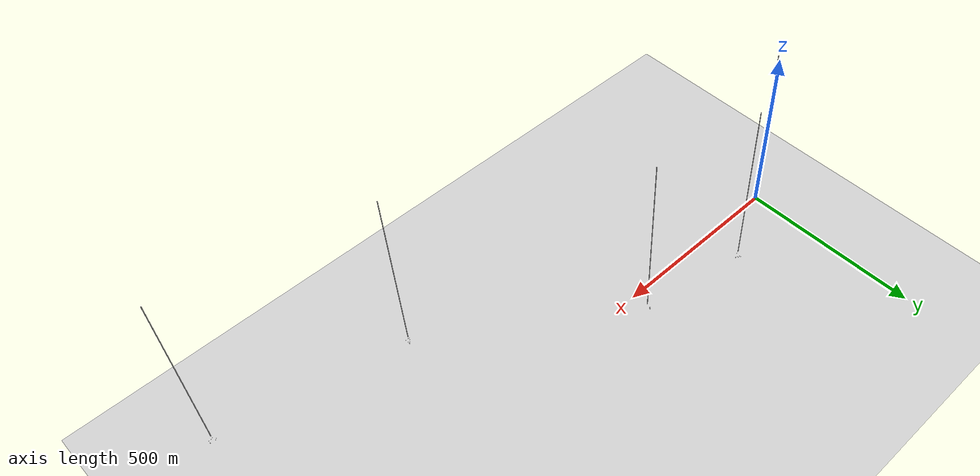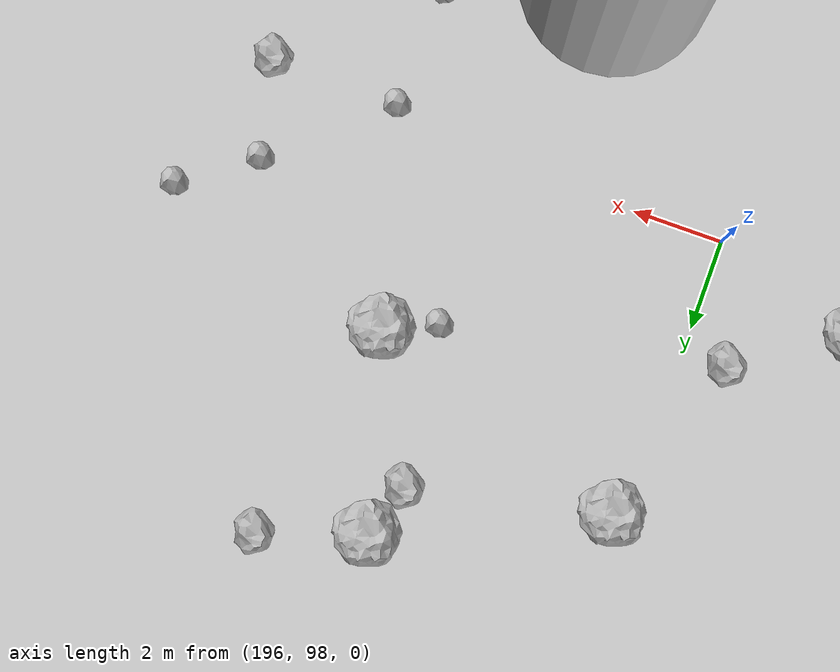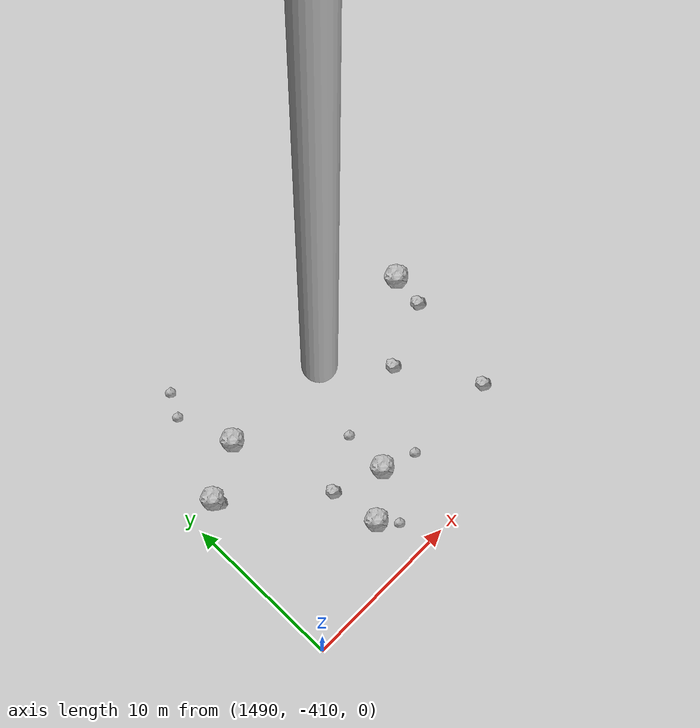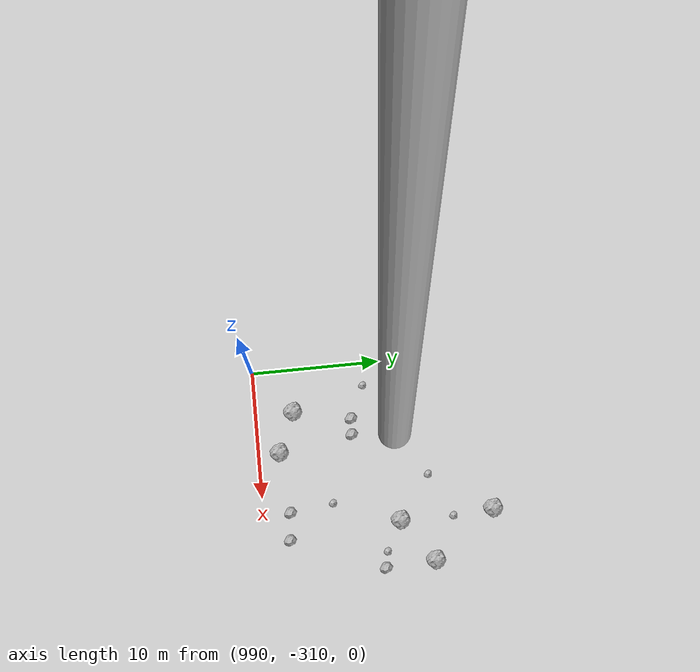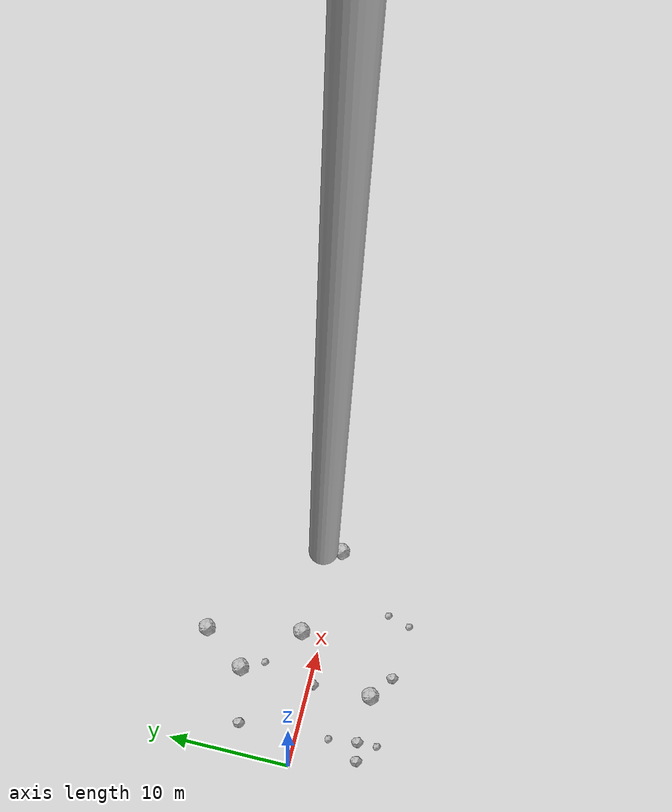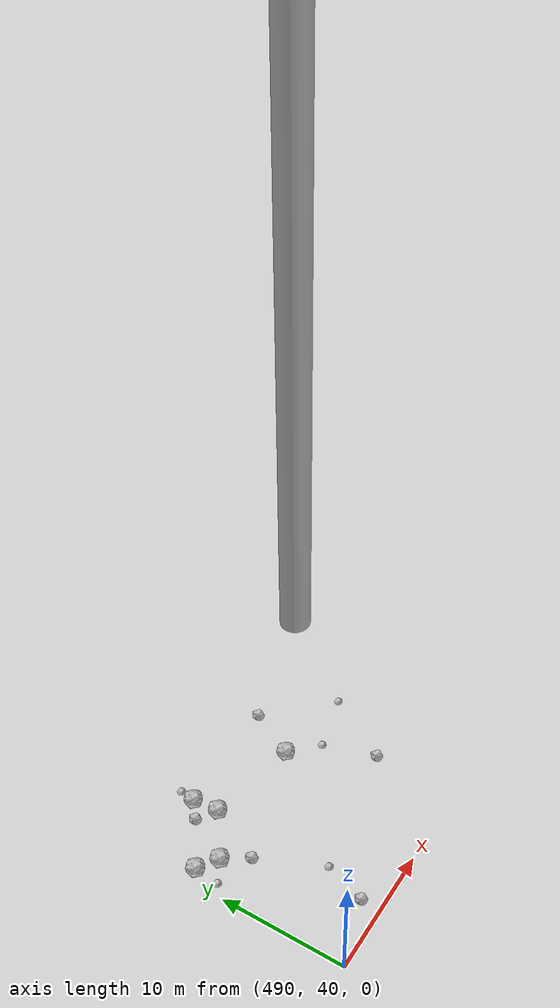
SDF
<?xml version="1.0" ?>
<sdf version="1.6">
  <world name="default">

    <include>
      <uri>model://custom_ground</uri>
    </include>

    <include>
      <uri>model://sun</uri>
    </include>

    <spherical_coordinates>
      <surface_model>EARTH_WGS84</surface_model>
      <latitude_deg>38.161479</latitude_deg>
      <longitude_deg>-122.454630</longitude_deg>
      <elevation>488.0</elevation>
      <heading_deg>90</heading_deg>
    </spherical_coordinates>

    <model name="rock1_0_0">
      <include>
        <uri>model://rock1</uri>
        <pose>9.806226273194557 9.635605801908241 0.5 0 0 0</pose>
      </include>
    </model>
    <model name="rock1_0_1">
      <include>
        <uri>model://rock1</uri>
        <pose>11.434023313113588 1.7371510292280838 0.5 0 0 0</pose>
      </include>
    </model>
    <model name="rock1_0_2">
      <include>
        <uri>model://rock1</uri>
        <pose>7.086647008703208 5.93867562342697 0.5 0 0 0</pose>
      </include>
    </model>
    <model name="rock1_0_3">
      <include>
        <uri>model://rock1</uri>
        <pose>7.252653592843094 -5.152449096167386 0.5 0 0 0</pose>
      </include>
    </model>
    <model name="rock1_0_4">
      <include>
        <uri>model://rock1</uri>
        <pose>19.60357026715036 0.11052997351128369 0.5 0 0 0</pose>
      </include>
    </model>
    <model name="rock2_0_0">
      <include>
        <uri>model://rock2</uri>
        <pose>2.4563849104212543 4.830803700542845 0.3 0 0 0</pose>
      </include>
    </model>
    <model name="rock2_0_1">
      <include>
        <uri>model://rock2</uri>
        <pose>7.069601831724905 -0.2876015758020394 0.3 0 0 0</pose>
      </include>
    </model>
    <model name="rock2_0_2">
      <include>
        <uri>model://rock2</uri>
        <pose>3.218510120576239 -4.946196185809486 0.3 0 0 0</pose>
      </include>
    </model>
    <model name="rock2_0_3">
      <include>
        <uri>model://rock2</uri>
        <pose>9.211642133515735 -6.619205438132085 0.3 0 0 0</pose>
      </include>
    </model>
    <model name="rock2_0_4">
      <include>
        <uri>model://rock2</uri>
        <pose>1.6880100825145372 -5.177539545386951 0.3 0 0 0</pose>
      </include>
    </model>
    <model name="rock3_0_0">
      <include>
        <uri>model://rock3</uri>
        <pose>2.917738383887296 -2.6170254192683595 0.2 0 0 0</pose>
      </include>
    </model>
    <model name="rock3_0_1">
      <include>
        <uri>model://rock3</uri>
        <pose>14.099987020125337 -7.109140157967708 0.2 0 0 0</pose>
      </include>
    </model>
    <model name="rock3_0_2">
      <include>
        <uri>model://rock3</uri>
        <pose>3.271651831472273 -6.580611617294785 0.2 0 0 0</pose>
      </include>
    </model>
    <model name="rock3_0_3">
      <include>
        <uri>model://rock3</uri>
        <pose>14.672986854783751 -5.190299554719553 0.2 0 0 0</pose>
      </include>
    </model>
    <model name="rock3_0_4">
      <include>
        <uri>model://rock3</uri>
        <pose>8.036377437308532 4.059192648709153 0.2 0 0 0</pose>
      </include>
    </model>
    <model name="rock1_1_0">
      <include>
        <uri>model://rock1</uri>
        <pose>201.08624456078604 106.48152644956753 0.5 0 0 0</pose>
      </include>
    </model>
    <model name="rock1_1_1">
      <include>
        <uri>model://rock1</uri>
        <pose>196.3736275888332 104.32919044982532 0.5 0 0 0</pose>
      </include>
    </model>
    <model name="rock1_1_2">
      <include>
        <uri>model://rock1</uri>
        <pose>193.44001701241675 93.29503569209547 0.5 0 0 0</pose>
      </include>
    </model>
    <model name="rock1_1_3">
      <include>
        <uri>model://rock1</uri>
        <pose>202.2928516662522 102.2792011527591 0.5 0 0 0</pose>
      </include>
    </model>
    <model name="rock1_1_4">
      <include>
        <uri>model://rock1</uri>
        <pose>192.71290734245446 98.9714602832213 0.5 0 0 0</pose>
      </include>
    </model>
    <model name="rock2_1_0">
      <include>
        <uri>model://rock2</uri>
        <pose>206.53869026769877 97.49744673602878 0.3 0 0 0</pose>
      </include>
    </model>
    <model name="rock2_1_1">
      <include>
        <uri>model://rock2</uri>
        <pose>203.34417144211199 107.28238782374629 0.3 0 0 0</pose>
      </include>
    </model>
    <model name="rock2_1_2">
      <include>
        <uri>model://rock2</uri>
        <pose>195.32040305328655 108.14781541275718 0.3 0 0 0</pose>
      </include>
    </model>
    <model name="rock2_1_3">
      <include>
        <uri>model://rock2</uri>
        <pose>200.6791959377038 105.30753175909632 0.3 0 0 0</pose>
      </include>
    </model>
    <model name="rock2_1_4">
      <include>
        <uri>model://rock2</uri>
        <pose>195.07631069086864 100.53846789827196 0.3 0 0 0</pose>
      </include>
    </model>
    <model name="rock3_1_0">
      <include>
        <uri>model://rock3</uri>
        <pose>203.5225304710028 94.77417950737953 0.2 0 0 0</pose>
      </include>
    </model>
    <model name="rock3_1_1">
      <include>
        <uri>model://rock3</uri>
        <pose>201.12299971633848 101.74154530155039 0.2 0 0 0</pose>
      </include>
    </model>
    <model name="rock3_1_2">
      <include>
        <uri>model://rock3</uri>
        <pose>207.57856147508852 100.7693442086203 0.2 0 0 0</pose>
      </include>
    </model>
    <model name="rock3_1_3">
      <include>
        <uri>model://rock3</uri>
        <pose>206.01626186793928 99.61545129324018 0.2 0 0 0</pose>
      </include>
    </model>
    <model name="rock3_1_4">
      <include>
        <uri>model://rock3</uri>
        <pose>203.61835413717154 97.50680967952664 0.2 0 0 0</pose>
      </include>
    </model>
    <model name="rock1_2_0">
      <include>
        <uri>model://rock1</uri>
        <pose>495.9140366056291 54.3205018540382 0.5 0 0 0</pose>
      </include>
    </model>
    <model name="rock1_2_1">
      <include>
        <uri>model://rock1</uri>
        <pose>495.73953226885504 56.39329569973593 0.5 0 0 0</pose>
      </include>
    </model>
    <model name="rock1_2_2">
      <include>
        <uri>model://rock1</uri>
        <pose>492.52492719019205 51.86968842045019 0.5 0 0 0</pose>
      </include>
    </model>
    <model name="rock1_2_3">
      <include>
        <uri>model://rock1</uri>
        <pose>490.96192601683805 52.91630241078057 0.5 0 0 0</pose>
      </include>
    </model>
    <model name="rock1_2_4">
      <include>
        <uri>model://rock1</uri>
        <pose>503.1006982033069 52.82662199844787 0.5 0 0 0</pose>
      </include>
    </model>
    <model name="rock2_2_0">
      <include>
        <uri>model://rock2</uri>
        <pose>494.4298180964919 55.376324797469294 0.3 0 0 0</pose>
      </include>
    </model>
    <model name="rock2_2_1">
      <include>
        <uri>model://rock2</uri>
        <pose>495.02849131428303 41.56203537360889 0.3 0 0 0</pose>
      </include>
    </model>
    <model name="rock2_2_2">
      <include>
        <uri>model://rock2</uri>
        <pose>493.82664619053855 50.00145846874401 0.3 0 0 0</pose>
      </include>
    </model>
    <model name="rock2_2_3">
      <include>
        <uri>model://rock2</uri>
        <pose>505.0306491123157 56.62953208283914 0.3 0 0 0</pose>
      </include>
    </model>
    <model name="rock2_2_4">
      <include>
        <uri>model://rock2</uri>
        <pose>506.46249776367745 46.69792208899675 0.3 0 0 0</pose>
      </include>
    </model>
    <model name="rock3_2_0">
      <include>
        <uri>model://rock3</uri>
        <pose>495.92198448610986 57.65562303347539 0.2 0 0 0</pose>
      </include>
    </model>
    <model name="rock3_2_1">
      <include>
        <uri>model://rock3</uri>
        <pose>490.77895779690823 50.94350725729723 0.2 0 0 0</pose>
      </include>
    </model>
    <model name="rock3_2_2">
      <include>
        <uri>model://rock3</uri>
        <pose>509.56988298398016 51.925675128790935 0.2 0 0 0</pose>
      </include>
    </model>
    <model name="rock3_2_3">
      <include>
        <uri>model://rock3</uri>
        <pose>505.20555645498894 50.82238952266201 0.2 0 0 0</pose>
      </include>
    </model>
    <model name="rock3_2_4">
      <include>
        <uri>model://rock3</uri>
        <pose>496.13484452278834 44.8242111575422 0.2 0 0 0</pose>
      </include>
    </model>
    <model name="rock1_3_0">
      <include>
        <uri>model://rock1</uri>
        <pose>1006.0961336797976 -297.20977216320335 0.5 0 0 0</pose>
      </include>
    </model>
    <model name="rock1_3_1">
      <include>
        <uri>model://rock1</uri>
        <pose>993.5292016681221 -307.0414685908208 0.5 0 0 0</pose>
      </include>
    </model>
    <model name="rock1_3_2">
      <include>
        <uri>model://rock1</uri>
        <pose>996.6530160156849 -308.3572231212052 0.5 0 0 0</pose>
      </include>
    </model>
    <model name="rock1_3_3">
      <include>
        <uri>model://rock1</uri>
        <pose>1002.6135412749779 -292.40836698947123 0.5 0 0 0</pose>
      </include>
    </model>
    <model name="rock1_3_4">
      <include>
        <uri>model://rock1</uri>
        <pose>1002.8064893785296 -299.56001963054285 0.5 0 0 0</pose>
      </include>
    </model>
    <model name="rock2_3_0">
      <include>
        <uri>model://rock2</uri>
        <pose>995.7096154684757 -302.6247895942869 0.3 0 0 0</pose>
      </include>
    </model>
    <model name="rock2_3_1">
      <include>
        <uri>model://rock2</uri>
        <pose>1001.3575928636121 -307.8925150965792 0.3 0 0 0</pose>
      </include>
    </model>
    <model name="rock2_3_2">
      <include>
        <uri>model://rock2</uri>
        <pose>994.4358672584698 -302.56256378256353 0.3 0 0 0</pose>
      </include>
    </model>
    <model name="rock2_3_3">
      <include>
        <uri>model://rock2</uri>
        <pose>1003.4688910876057 -308.0887942736892 0.3 0 0 0</pose>
      </include>
    </model>
    <model name="rock2_3_4">
      <include>
        <uri>model://rock2</uri>
        <pose>1006.2742866258453 -301.01780352332366 0.3 0 0 0</pose>
      </include>
    </model>
    <model name="rock3_3_0">
      <include>
        <uri>model://rock3</uri>
        <pose>1000.9349343654178 -304.6029404744024 0.2 0 0 0</pose>
      </include>
    </model>
    <model name="rock3_3_1">
      <include>
        <uri>model://rock3</uri>
        <pose>1002.8009130979573 -295.4974108822949 0.2 0 0 0</pose>
      </include>
    </model>
    <model name="rock3_3_2">
      <include>
        <uri>model://rock3</uri>
        <pose>999.4064153348542 -297.0943795008577 0.2 0 0 0</pose>
      </include>
    </model>
    <model name="rock3_3_3">
      <include>
        <uri>model://rock3</uri>
        <pose>1005.0374721298288 -300.7960543765687 0.2 0 0 0</pose>
      </include>
    </model>
    <model name="rock3_3_4">
      <include>
        <uri>model://rock3</uri>
        <pose>991.8598109877348 -301.4369381296052 0.2 0 0 0</pose>
      </include>
    </model>
    <model name="rock1_4_0">
      <include>
        <uri>model://rock1</uri>
        <pose>1509.0580208144468 -397.5276813041903 0.5 0 0 0</pose>
      </include>
    </model>
    <model name="rock1_4_1">
      <include>
        <uri>model://rock1</uri>
        <pose>1495.2175045860238 -397.4406635640068 0.5 0 0 0</pose>
      </include>
    </model>
    <model name="rock1_4_2">
      <include>
        <uri>model://rock1</uri>
        <pose>1497.7882534762375 -406.8769865670148 0.5 0 0 0</pose>
      </include>
    </model>
    <model name="rock1_4_3">
      <include>
        <uri>model://rock1</uri>
        <pose>1491.9021099423137 -399.049065900877 0.5 0 0 0</pose>
      </include>
    </model>
    <model name="rock1_4_4">
      <include>
        <uri>model://rock1</uri>
        <pose>1500.2964123865913 -404.916691688845 0.5 0 0 0</pose>
      </include>
    </model>
    <model name="rock2_4_0">
      <include>
        <uri>model://rock2</uri>
        <pose>1508.03050367526 -405.68022731171783 0.3 0 0 0</pose>
      </include>
    </model>
    <model name="rock2_4_1">
      <include>
        <uri>model://rock2</uri>
        <pose>1497.1941206058286 -403.84603101557354 0.3 0 0 0</pose>
      </include>
    </model>
    <model name="rock2_4_2">
      <include>
        <uri>model://rock2</uri>
        <pose>1505.0644043736702 -401.12405497331554 0.3 0 0 0</pose>
      </include>
    </model>
    <model name="rock2_4_3">
      <include>
        <uri>model://rock2</uri>
        <pose>1508.8079948110117 -399.5326023726145 0.3 0 0 0</pose>
      </include>
    </model>
    <model name="rock2_4_4">
      <include>
        <uri>model://rock2</uri>
        <pose>1492.0064265256262 -399.4820843692254 0.3 0 0 0</pose>
      </include>
    </model>
    <model name="rock3_4_0">
      <include>
        <uri>model://rock3</uri>
        <pose>1498.5875994610642 -407.9666494368208 0.2 0 0 0</pose>
      </include>
    </model>
    <model name="rock3_4_1">
      <include>
        <uri>model://rock3</uri>
        <pose>1493.8907028655772 -394.15525216482047 0.2 0 0 0</pose>
      </include>
    </model>
    <model name="rock3_4_2">
      <include>
        <uri>model://rock3</uri>
        <pose>1494.6357785592309 -392.8158147647602 0.2 0 0 0</pose>
      </include>
    </model>
    <model name="rock3_4_3">
      <include>
        <uri>model://rock3</uri>
        <pose>1502.2298868166085 -405.69734475694776 0.2 0 0 0</pose>
      </include>
    </model>
    <model name="rock3_4_4">
      <include>
        <uri>model://rock3</uri>
        <pose>1500.2356304414395 -402.19161554752986 0.2 0 0 0</pose>
      </include>
    </model>

    <model name="cylinder_1">
      <static>true</static>
      <link name="link">
        <visual name="visual">
          <geometry>
            <cylinder>
              <radius>1</radius>
              <length>500</length>
            </cylinder>
          </geometry>
        </visual>
      </link>
      <pose>10 0 270 0 0 0</pose>
    </model>

    <model name="cylinder_2">
      <static>true</static>
      <link name="link">
        <visual name="visual">
          <geometry>
            <cylinder>
              <radius>1</radius>
              <length>500</length>
            </cylinder>
          </geometry>
        </visual>
      </link>
      <pose>200 100 270 0 0 0</pose>
    </model>

    <model name="cylinder_3">
      <static>true</static>
      <link name="link">
        <visual name="visual">
          <geometry>
            <cylinder>
              <radius>1</radius>
              <length>500</length>
            </cylinder>
          </geometry>
        </visual>
      </link>
      <pose>500 50 270 0 0 0</pose>
    </model>

    <model name="cylinder_4">
      <static>true</static>
      <link name="link">
        <visual name="visual">
          <geometry>
            <cylinder>
              <radius>1</radius>
              <length>500</length>
            </cylinder>
          </geometry>
        </visual>
      </link>
      <pose>1000 -300 270 0 0 0</pose>
    </model>

    <model name="cylinder_5">
      <static>true</static>
      <link name="link">
        <visual name="visual">
          <geometry>
            <cylinder>
              <radius>1</radius>
              <length>500</length>
            </cylinder>
          </geometry>
        </visual>
      </link>
      <pose>1500 -400 270 0 0 0</pose>
    </model>

  </world>
</sdf>

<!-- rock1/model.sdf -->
<sdf version="1.6">
  <model name="rock1">
    <static>true</static> <!-- Set to true if the model should not move -->
    <pose>0 0 0 0 0 0</pose>

    <!--z offset is 0.5 for full scale-->

    <link name="link">
      <collision name="rock1_collision">
        <geometry>
          <mesh>
            <uri>model://meshes/rock1.dae</uri>
          </mesh>
        </geometry>
      </collision>
      <visual name="rock1_visual">
        <geometry>
          <mesh>
            <uri>model://meshes/rock1.dae</uri>
          </mesh>
        </geometry>
        <material>
          <script>
            <uri>model://materials/scripts/sand_pebbles.material</uri>
            <name>custom_ground/Image</name>
          </script>
        </material>
      </visual>
    </link>
  </model>
</sdf>

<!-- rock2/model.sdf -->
<sdf version="1.6">
  <model name="rock2">
    <static>true</static> <!-- Set to true if the model should not move -->
    <pose>0 0 0 0 0 0</pose>

    <!--z offset is 0.3 for full scale-->

    <link name="link">
      <collision name="rock2_collision">
        <geometry>
          <mesh>
            <uri>model://meshes/rock2.dae</uri>
          </mesh>
        </geometry>
      </collision>
      <visual name="rock2_visual">
        <geometry>
          <mesh>
            <uri>model://meshes/rock2.dae</uri>
          </mesh>
        </geometry>
        <material>
          <script>
            <uri>model://materials/scripts/sand_pebbles.material</uri>
            <name>custom_ground/Image</name>
          </script>
        </material>
      </visual>
    </link>
  </model>
</sdf>

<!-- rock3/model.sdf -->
<sdf version="1.6">
  <model name="rock3">
    <static>true</static> <!-- Set to true if the model should not move -->
    <pose>0 0 0 0 0 0</pose>

    <!--z offset is 0.2 for full scale-->

    <link name="link">
      <collision name="rock3_collision">
        <geometry>
          <mesh>
            <uri>model://meshes/rock3.dae</uri>
          </mesh>
        </geometry>
      </collision>
      <visual name="rock3_visual">
        <geometry>
          <mesh>
            <uri>model://meshes/rock3.dae</uri>
          </mesh>
        </geometry>
        <material>
          <script>
            <uri>model://materials/scripts/sand_pebbles.material</uri>
            <name>custom_ground/Image</name>
          </script>
        </material>
      </visual>
    </link>
  </model>
</sdf>

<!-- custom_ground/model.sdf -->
<sdf version="1.6">
  <model name="custom_ground">
    <static>true</static> <!-- Ground is static and immovable -->
    <link name="ground_link">
      <pose>240 0 0 0 0 0</pose> <!-- Position and orientation relative to the world -->
      <!-- Visual Representation -->
      <visual name="ground_visual">
        <geometry>
          <plane>
            <normal>0 0 1</normal> <!-- Upward facing plane -->
            <size>500 500</size> <!-- Size of the plane -->
          </plane>
        </geometry>
        <material>
          <script>
            <uri>model://materials/scripts/sand_pebbles.material</uri>
            <name>custom_ground/Image</name>
          </script>
        </material>
      </visual>

      <!-- Collision Representation -->
      <collision name="ground_collision">
        <geometry>
          <plane>
            <normal>0 0 1</normal>
            <size>100 100</size>
          </plane>
        </geometry>
      </collision>

    </link>
  </model>
</sdf>
